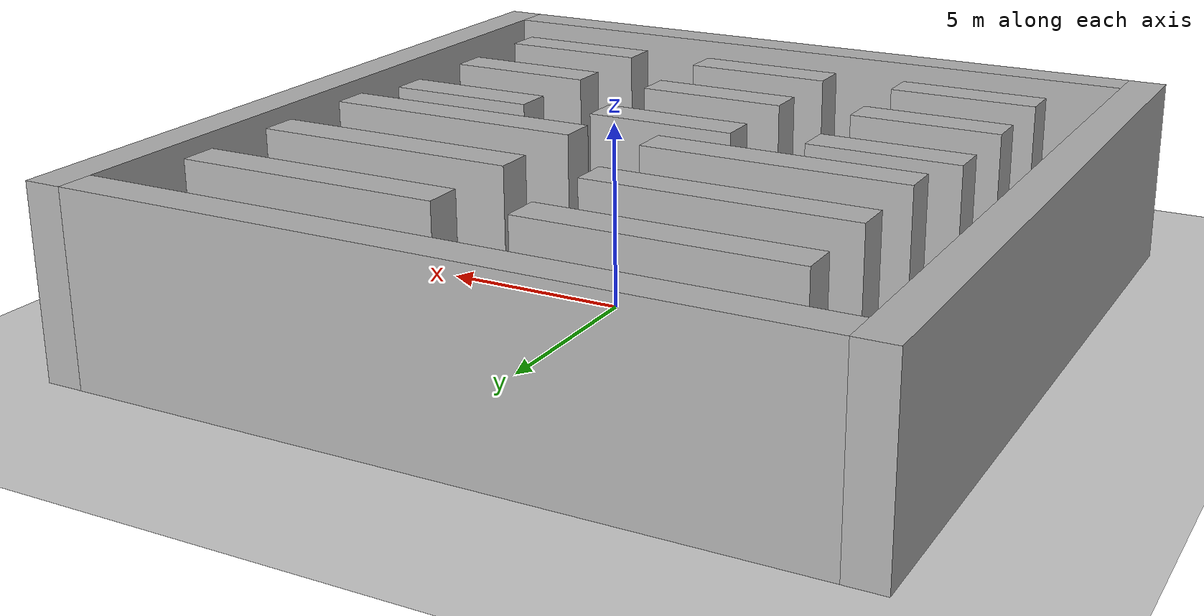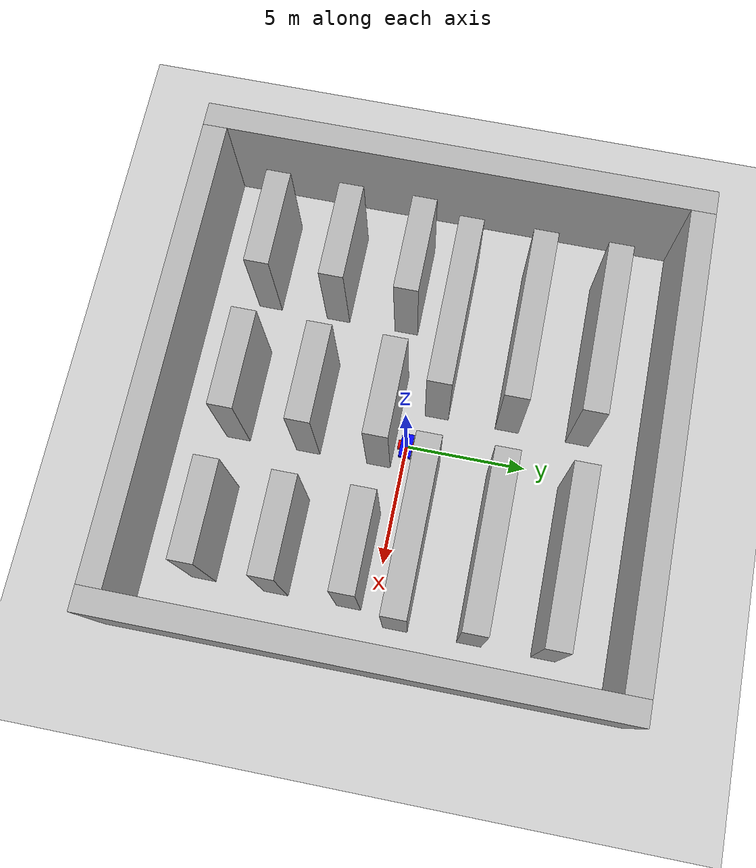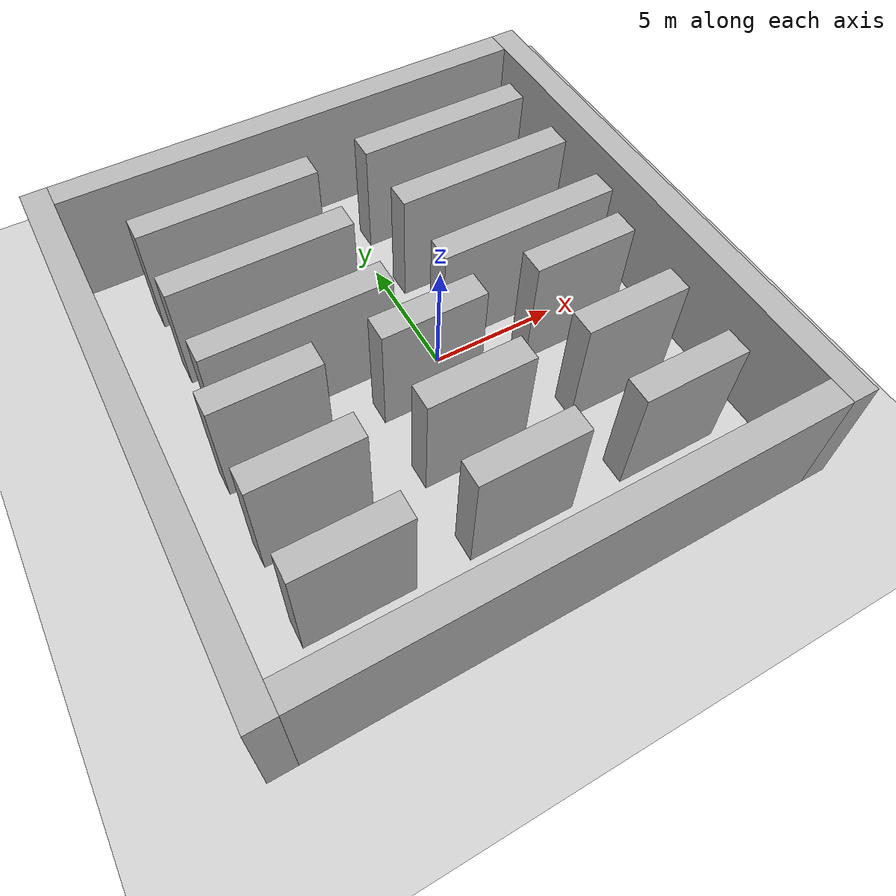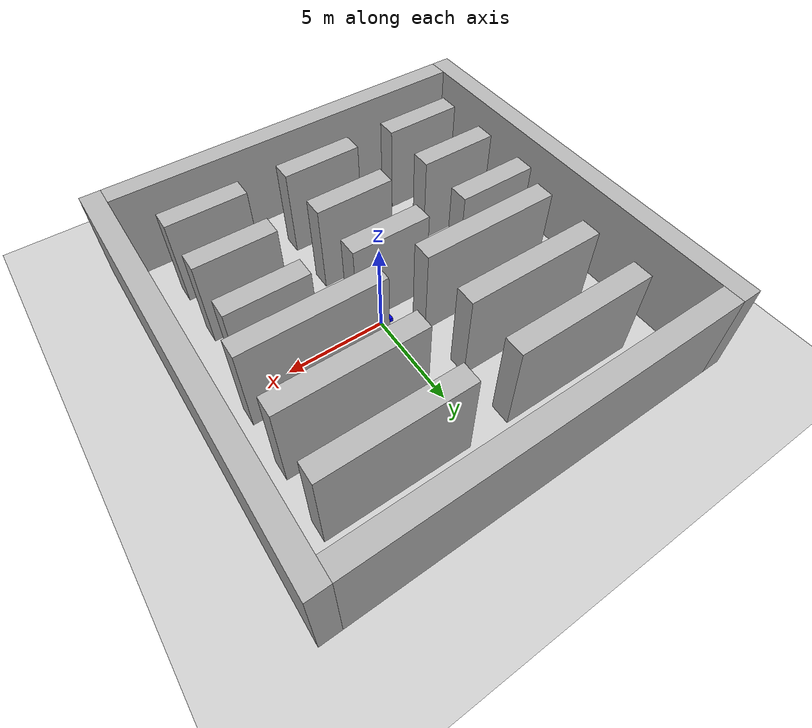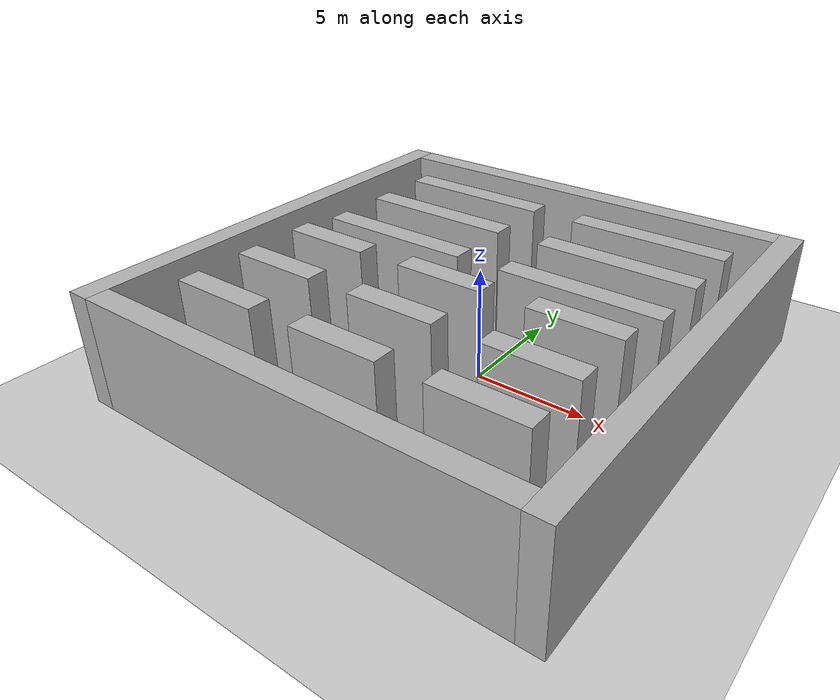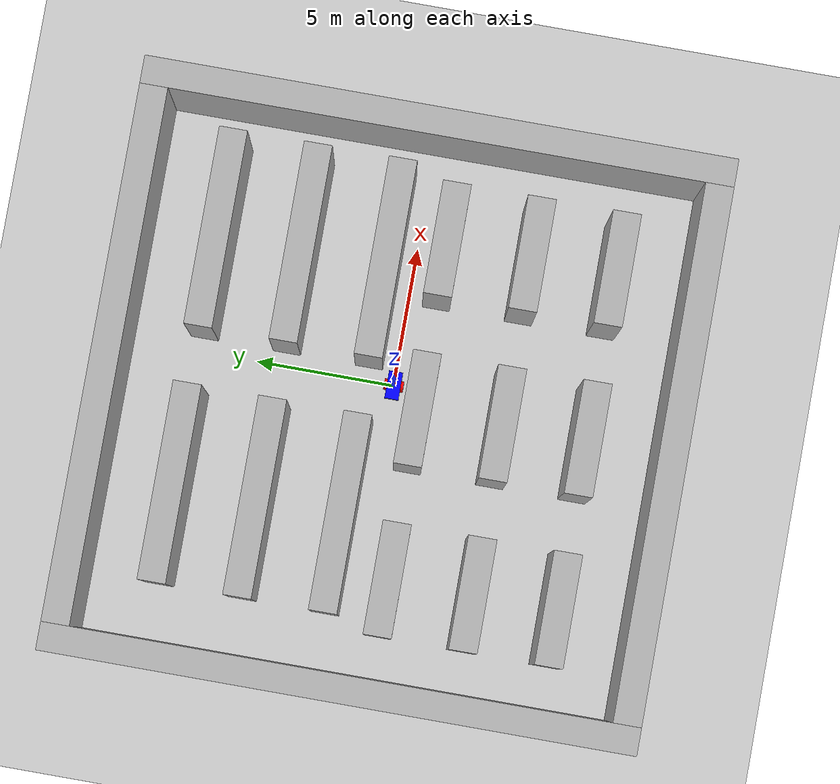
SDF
<?xml version="1.0" ?>
<sdf version="1.9">
    <world name="warehouse">
        <physics name='1ms' type='ignored'>
        <max_step_size>0.001</max_step_size>
        <real_time_factor>1</real_time_factor>
        <real_time_update_rate>1000</real_time_update_rate>
        </physics>
    <plugin
      filename="ignition-gazebo-physics-system"
      name="ignition::gazebo::systems::Physics">
    </plugin>
    <plugin
      filename="ignition-gazebo-sensors-system"
      name="ignition::gazebo::systems::Sensors">
      <render_engine>ogre2</render_engine>
    </plugin>
    <plugin
      filename="ignition-gazebo-scene-broadcaster-system"
      name="ignition::gazebo::systems::SceneBroadcaster">
    </plugin>
    <plugin
      filename="ignition-gazebo-user-commands-system"
      name="ignition::gazebo::systems::UserCommands">
    </plugin>
    <plugin filename="libignition-gazebo-imu-system.so" name="ignition::gazebo::systems::Imu">
    </plugin>
    <plugin
      filename="BasicSystem"
      name="ros_gazebo::BasicSystem"> <!--Must change directories-->
    </plugin>
    <plugin
      filename="FullSystem"
      name="ros_gazebo::FullSystem">
    </plugin>

    <gravity>0 0 -9.8</gravity>
    <magnetic_field>6e-06 2.3e-05 -4.2e-05</magnetic_field>
    <atmosphere type='adiabatic'/>
    <scene>
      <ambient>0.4 0.4 0.4 1</ambient>
      <background>0.7 0.7 0.7 1</background>
      <shadows>true</shadows>
    </scene>

    <light name="sun" type="directional">
      <cast_shadows>true</cast_shadows>
      <pose>0 0 10 0 0 0</pose>
      <diffuse>0.8 0.8 0.8 1</diffuse>
      <specular>0.2 0.2 0.2 1</specular>
      <attenuation>
        <range>1000</range>
        <constant>0.9</constant>
        <linear>0.01</linear>
        <quadratic>0.001</quadratic>
      </attenuation>
      <direction>-0.5 0.1 -0.9</direction>
    </light>

    <model name='ground_plane'>
      <static>true</static>
      <link name='link'>
        <collision name='collision'>
          <geometry>
            <plane>
              <normal>0 0 1</normal>
              <size>100 100</size>
            </plane>
          </geometry>
          <surface>
            <friction>
              <ode/>
            </friction>
            <bounce/>
            <contact/>
          </surface>
        </collision>
        <visual name='visual'>
          <geometry>
            <plane>
              <normal>0 0 1</normal>
              <size>100 100</size>
            </plane>
          </geometry>
          <material>
            <ambient>0.8 0.8 0.8 1</ambient>
            <diffuse>0.8 0.8 0.8 1</diffuse>
            <specular>0.8 0.8 0.8 1</specular>
          </material>
        </visual>
        <pose>0 0 0 0 -0 0</pose>
        <inertial>
          <pose>0 0 0 0 -0 0</pose>
          <mass>1</mass>
          <inertia>
            <ixx>1</ixx>
            <ixy>0</ixy>
            <ixz>0</ixz>
            <iyy>1</iyy>
            <iyz>0</iyz>
            <izz>1</izz>
          </inertia>
        </inertial>
        <enable_wind>false</enable_wind>
      </link>
      <pose>-6 -2 0 0 -0 0</pose>
      <self_collide>false</self_collide>
    </model>

    <model name='Boundary1'>
      <pose>-1.0 10 2.5 0 -0 0</pose>
      <link name='box_link'>
        <inertial>
          <inertia>
            <ixx>0.16666</ixx>
            <ixy>0</ixy>
            <ixz>0</ixz>
            <iyy>0.16666</iyy>
            <iyz>0</iyz>
            <izz>0.16666</izz>
          </inertia>
          <mass>1</mass>
          <pose>0 0 0 0 -0 0</pose>
        </inertial>
        <collision name='box_collision'>
          <geometry>
            <box>
              <size>19 1 5</size>
            </box>
          </geometry>
          <surface>
            <friction>
              <ode/>
            </friction>
            <bounce/>
            <contact/>
          </surface>
        </collision>
        <visual name='box_visual'>
          <geometry>
            <box>
              <size>19 1 5</size>
            </box>
          </geometry>
          <material>
            <ambient>0.3 0.3 0.3 1</ambient>
            <diffuse>0.7 0.7 0.7 1</diffuse>
            <specular>1 1 1 1</specular>
          </material>
        </visual>
        <pose>0 0 0 0 -0 0</pose>
        <enable_wind>false</enable_wind>
      </link>
      <static>true</static>
      <self_collide>false</self_collide>
    </model>

    <model name='Boundary2'>
      <pose>-1.0 -10 2.5 0 -0 0</pose>
      <link name='box_link'>
        <inertial>
          <inertia>
            <ixx>0.16666</ixx>
            <ixy>0</ixy>
            <ixz>0</ixz>
            <iyy>0.16666</iyy>
            <iyz>0</iyz>
            <izz>0.16666</izz>
          </inertia>
          <mass>1</mass>
          <pose>0 0 0 0 -0 0</pose>
        </inertial>
        <collision name='box_collision'>
          <geometry>
            <box>
              <size>19 1 5</size>
            </box>
          </geometry>
          <surface>
            <friction>
              <ode/>
            </friction>
            <bounce/>
            <contact/>
          </surface>
        </collision>
        <visual name='box_visual'>
          <geometry>
            <box>
              <size>19 1 5</size>
            </box>
          </geometry>
          <material>
            <ambient>0.3 0.3 0.3 1</ambient>
            <diffuse>0.7 0.7 0.7 1</diffuse>
            <specular>1 1 1 1</specular>
          </material>
        </visual>
        <pose>0 0 0 0 -0 0</pose>
        <enable_wind>false</enable_wind>
      </link>
      <static>true</static>
      <self_collide>false</self_collide>
    </model>

    <model name='Boundary3'>
      <pose>-11 0 2.5 0 -0 0</pose>
      <link name='box_link'>
        <inertial>
          <inertia>
            <ixx>0.16666</ixx>
            <ixy>0</ixy>
            <ixz>0</ixz>
            <iyy>0.16666</iyy>
            <iyz>0</iyz>
            <izz>0.16666</izz>
          </inertia>
          <mass>1</mass>
          <pose>0 0 0 0 -0 0</pose>
        </inertial>
        <collision name='box_collision'>
          <geometry>
            <box>
              <size>1 21 5</size>
            </box>
          </geometry>
          <surface>
            <friction>
              <ode/>
            </friction>
            <bounce/>
            <contact/>
          </surface>
        </collision>
        <visual name='box_visual'>
          <geometry>
            <box>
              <size>1 21 5</size>
            </box>
          </geometry>
          <material>
            <ambient>0.3 0.3 0.3 1</ambient>
            <diffuse>0.7 0.7 0.7 1</diffuse>
            <specular>1 1 1 1</specular>
          </material>
        </visual>
        <pose>0 0 0 0 -0 0</pose>
        <enable_wind>false</enable_wind>
      </link>
      <static>true</static>
      <self_collide>false</self_collide>
    </model>
    <model name='Boundary4'>
      <pose>9 0 2.5 0 -0 0</pose>
      <link name='box_link'>
        <inertial>
          <inertia>
            <ixx>0.16666</ixx>
            <ixy>0</ixy>
            <ixz>0</ixz>
            <iyy>0.16666</iyy>
            <iyz>0</iyz>
            <izz>0.16666</izz>
          </inertia>
          <mass>1</mass>
          <pose>0 0 0 0 -0 0</pose>
        </inertial>
        <collision name='box_collision'>
          <geometry>
            <box>
              <size>1 21 5</size>
            </box>
          </geometry>
          <surface>
            <friction>
              <ode/>
            </friction>
            <bounce/>
            <contact/>
          </surface>
        </collision>
        <visual name='box_visual'>
          <geometry>
            <box>
              <size>1 21 5</size>
            </box>
          </geometry>
          <material>
            <ambient>0.3 0.3 0.3 1</ambient>
            <diffuse>0.7 0.7 0.7 1</diffuse>
            <specular>1 1 1 1</specular>
          </material>
        </visual>
        <pose>0 0 0 0 -0 0</pose>
        <enable_wind>false</enable_wind>
      </link>
      <static>true</static>
      <self_collide>false</self_collide>
    </model>

    <model name='smallshelf1'>
      <pose>-7 -7 2.5 0 -0 0</pose>
      <link name='box_link'>
        <inertial>
          <inertia>
            <ixx>0.16666</ixx>
            <ixy>0</ixy>
            <ixz>0</ixz>
            <iyy>0.16666</iyy>
            <iyz>0</iyz>
            <izz>0.16666</izz>
          </inertia>
          <mass>1</mass>
          <pose>0 0 0 0 -0 0</pose>
        </inertial>
        <collision name='box_collision'>
          <geometry>
            <box>
              <size>4 1 5</size>
            </box>
          </geometry>
          <surface>
            <friction>
              <ode/>
            </friction>
            <bounce/>
            <contact/>
          </surface>
        </collision>
        <visual name='box_visual'>
          <geometry>
            <box>
              <size>4 1 5</size>
            </box>
          </geometry>
          <material>
            <ambient>0.3 0.3 0.3 1</ambient>
            <diffuse>0.7 0.7 0.7 1</diffuse>
            <specular>1 1 1 1</specular>
          </material>
        </visual>
        <pose>0 0 0 0 -0 0</pose>
        <enable_wind>false</enable_wind>
      </link>
      <static>true</static>
      <self_collide>false</self_collide>
    </model>

    <model name='smallshelf2'>
      <pose>-1 -7 2.5 0 -0 0</pose>
      <link name='box_link'>
        <inertial>
          <inertia>
            <ixx>0.16666</ixx>
            <ixy>0</ixy>
            <ixz>0</ixz>
            <iyy>0.16666</iyy>
            <iyz>0</iyz>
            <izz>0.16666</izz>
          </inertia>
          <mass>1</mass>
          <pose>0 0 0 0 -0 0</pose>
        </inertial>
        <collision name='box_collision'>
          <geometry>
            <box>
              <size>4 1 5</size>
            </box>
          </geometry>
          <surface>
            <friction>
              <ode/>
            </friction>
            <bounce/>
            <contact/>
          </surface>
        </collision>
        <visual name='box_visual'>
          <geometry>
            <box>
              <size>4 1 5</size>
            </box>
          </geometry>
          <material>
            <ambient>0.3 0.3 0.3 1</ambient>
            <diffuse>0.7 0.7 0.7 1</diffuse>
            <specular>1 1 1 1</specular>
          </material>
        </visual>
        <pose>0 0 0 0 -0 0</pose>
        <enable_wind>false</enable_wind>
      </link>
      <static>true</static>
      <self_collide>false</self_collide>
    </model>

    <model name='smallshelf3'>
      <pose>5 -7 2.5 0 -0 0</pose>
      <link name='box_link'>
        <inertial>
          <inertia>
            <ixx>0.16666</ixx>
            <ixy>0</ixy>
            <ixz>0</ixz>
            <iyy>0.16666</iyy>
            <iyz>0</iyz>
            <izz>0.16666</izz>
          </inertia>
          <mass>1</mass>
          <pose>0 0 0 0 -0 0</pose>
        </inertial>
        <collision name='box_collision'>
          <geometry>
            <box>
              <size>4 1 5</size>
            </box>
          </geometry>
          <surface>
            <friction>
              <ode/>
            </friction>
            <bounce/>
            <contact/>
          </surface>
        </collision>
        <visual name='box_visual'>
          <geometry>
            <box>
              <size>4 1 5</size>
            </box>
          </geometry>
          <material>
            <ambient>0.3 0.3 0.3 1</ambient>
            <diffuse>0.7 0.7 0.7 1</diffuse>
            <specular>1 1 1 1</specular>
          </material>
        </visual>
        <pose>0 0 0 0 -0 0</pose>
        <enable_wind>false</enable_wind>
      </link>
      <static>true</static>
      <self_collide>false</self_collide>
    </model>

    <model name='smallshelf4'>
      <pose>5 -4 2.5 0 -0 0</pose>
      <link name='box_link'>
        <inertial>
          <inertia>
            <ixx>0.16666</ixx>
            <ixy>0</ixy>
            <ixz>0</ixz>
            <iyy>0.16666</iyy>
            <iyz>0</iyz>
            <izz>0.16666</izz>
          </inertia>
          <mass>1</mass>
          <pose>0 0 0 0 -0 0</pose>
        </inertial>
        <collision name='box_collision'>
          <geometry>
            <box>
              <size>4 1 5</size>
            </box>
          </geometry>
          <surface>
            <friction>
              <ode/>
            </friction>
            <bounce/>
            <contact/>
          </surface>
        </collision>
        <visual name='box_visual'>
          <geometry>
            <box>
              <size>4 1 5</size>
            </box>
          </geometry>
          <material>
            <ambient>0.3 0.3 0.3 1</ambient>
            <diffuse>0.7 0.7 0.7 1</diffuse>
            <specular>1 1 1 1</specular>
          </material>
        </visual>
        <pose>0 0 0 0 -0 0</pose>
        <enable_wind>false</enable_wind>
      </link>
      <static>true</static>
      <self_collide>false</self_collide>
    </model>

    <model name='smallshelf5'>
      <pose>-1 -4 2.5 0 -0 0</pose>
      <link name='box_link'>
        <inertial>
          <inertia>
            <ixx>0.16666</ixx>
            <ixy>0</ixy>
            <ixz>0</ixz>
            <iyy>0.16666</iyy>
            <iyz>0</iyz>
            <izz>0.16666</izz>
          </inertia>
          <mass>1</mass>
          <pose>0 0 0 0 -0 0</pose>
        </inertial>
        <collision name='box_collision'>
          <geometry>
            <box>
              <size>4 1 5</size>
            </box>
          </geometry>
          <surface>
            <friction>
              <ode/>
            </friction>
            <bounce/>
            <contact/>
          </surface>
        </collision>
        <visual name='box_visual'>
          <geometry>
            <box>
              <size>4 1 5</size>
            </box>
          </geometry>
          <material>
            <ambient>0.3 0.3 0.3 1</ambient>
            <diffuse>0.7 0.7 0.7 1</diffuse>
            <specular>1 1 1 1</specular>
          </material>
        </visual>
        <pose>0 0 0 0 -0 0</pose>
        <enable_wind>false</enable_wind>
      </link>
      <static>true</static>
      <self_collide>false</self_collide>
    </model>
    <model name='smallshelf6'>
      <pose>-7 -4 2.5 0 -0 0</pose>
      <link name='box_link'>
        <inertial>
          <inertia>
            <ixx>0.16666</ixx>
            <ixy>0</ixy>
            <ixz>0</ixz>
            <iyy>0.16666</iyy>
            <iyz>0</iyz>
            <izz>0.16666</izz>
          </inertia>
          <mass>1</mass>
          <pose>0 0 0 0 -0 0</pose>
        </inertial>
        <collision name='box_collision'>
          <geometry>
            <box>
              <size>4 1 5</size>
            </box>
          </geometry>
          <surface>
            <friction>
              <ode/>
            </friction>
            <bounce/>
            <contact/>
          </surface>
        </collision>
        <visual name='box_visual'>
          <geometry>
            <box>
              <size>4 1 5</size>
            </box>
          </geometry>
          <material>
            <ambient>0.3 0.3 0.3 1</ambient>
            <diffuse>0.7 0.7 0.7 1</diffuse>
            <specular>1 1 1 1</specular>
          </material>
        </visual>
        <pose>0 0 0 0 -0 0</pose>
        <enable_wind>false</enable_wind>
      </link>
      <static>true</static>
      <self_collide>false</self_collide>
    </model>

    <model name='smallshelf7'>
      <pose>-7 -1 2.5 0 -0 0</pose>
      <link name='box_link'>
        <inertial>
          <inertia>
            <ixx>0.16666</ixx>
            <ixy>0</ixy>
            <ixz>0</ixz>
            <iyy>0.16666</iyy>
            <iyz>0</iyz>
            <izz>0.16666</izz>
          </inertia>
          <mass>1</mass>
          <pose>0 0 0 0 -0 0</pose>
        </inertial>
        <collision name='box_collision'>
          <geometry>
            <box>
              <size>4 1 5</size>
            </box>
          </geometry>
          <surface>
            <friction>
              <ode/>
            </friction>
            <bounce/>
            <contact/>
          </surface>
        </collision>
        <visual name='box_visual'>
          <geometry>
            <box>
              <size>4 1 5</size>
            </box>
          </geometry>
          <material>
            <ambient>0.3 0.3 0.3 1</ambient>
            <diffuse>0.7 0.7 0.7 1</diffuse>
            <specular>1 1 1 1</specular>
          </material>
        </visual>
        <pose>0 0 0 0 -0 0</pose>
        <enable_wind>false</enable_wind>
      </link>
      <static>true</static>
      <self_collide>false</self_collide>
    </model>

    <model name='smallself8'>
      <pose>-1 -1 2.5 0 -0 0</pose>
      <link name='box_link'>
        <inertial>
          <inertia>
            <ixx>0.16666</ixx>
            <ixy>0</ixy>
            <ixz>0</ixz>
            <iyy>0.16666</iyy>
            <iyz>0</iyz>
            <izz>0.16666</izz>
          </inertia>
          <mass>1</mass>
          <pose>0 0 0 0 -0 0</pose>
        </inertial>
        <collision name='box_collision'>
          <geometry>
            <box>
              <size>4 1 5</size>
            </box>
          </geometry>
          <surface>
            <friction>
              <ode/>
            </friction>
            <bounce/>
            <contact/>
          </surface>
        </collision>
        <visual name='box_visual'>
          <geometry>
            <box>
              <size>4 1 5</size>
            </box>
          </geometry>
          <material>
            <ambient>0.3 0.3 0.3 1</ambient>
            <diffuse>0.7 0.7 0.7 1</diffuse>
            <specular>1 1 1 1</specular>
          </material>
        </visual>
        <pose>0 0 0 0 -0 0</pose>
        <enable_wind>false</enable_wind>
      </link>
      <static>true</static>
      <self_collide>false</self_collide>
    </model>

    <model name='smallshelf9'>
      <pose>5 -1 2.5 0 -0 0</pose>
      <link name='box_link'>
        <inertial>
          <inertia>
            <ixx>0.16666</ixx>
            <ixy>0</ixy>
            <ixz>0</ixz>
            <iyy>0.16666</iyy>
            <iyz>0</iyz>
            <izz>0.16666</izz>
          </inertia>
          <mass>1</mass>
          <pose>0 0 0 0 -0 0</pose>
        </inertial>
        <collision name='box_collision'>
          <geometry>
            <box>
              <size>4 1 5</size>
            </box>
          </geometry>
          <surface>
            <friction>
              <ode/>
            </friction>
            <bounce/>
            <contact/>
          </surface>
        </collision>
        <visual name='box_visual'>
          <geometry>
            <box>
              <size>4 1 5</size>
            </box>
          </geometry>
          <material>
            <ambient>0.3 0.3 0.3 1</ambient>
            <diffuse>0.7 0.7 0.7 1</diffuse>
            <specular>1 1 1 1</specular>
          </material>
        </visual>
        <pose>0 0 0 0 -0 0</pose>
        <enable_wind>false</enable_wind>
      </link>
      <static>true</static>
      <self_collide>false</self_collide>
    </model>

    <model name='bs1'>
      <pose>4 1 2.5 0 -0 0</pose>
      <link name='box_link'>
        <inertial>
          <inertia>
            <ixx>0.16666</ixx>
            <ixy>0</ixy>
            <ixz>0</ixz>
            <iyy>0.16666</iyy>
            <iyz>0</iyz>
            <izz>0.16666</izz>
          </inertia>
          <mass>1</mass>
          <pose>0 0 0 0 -0 0</pose>
        </inertial>
        <collision name='box_collision'>
          <geometry>
            <box>
              <size>7 1 5</size>
            </box>
          </geometry>
          <surface>
            <friction>
              <ode/>
            </friction>
            <bounce/>
            <contact/>
          </surface>
        </collision>
        <visual name='box_visual'>
          <geometry>
            <box>
              <size>7 1 5</size>
            </box>
          </geometry>
          <material>
            <ambient>0.3 0.3 0.3 1</ambient>
            <diffuse>0.7 0.7 0.7 1</diffuse>
            <specular>1 1 1 1</specular>
          </material>
        </visual>
        <pose>0 0 0 0 -0 0</pose>
        <enable_wind>false</enable_wind>
      </link>
      <static>true</static>
      <self_collide>false</self_collide>
    </model>

    <model name='bs2'>
      <pose>-5 1 2.5 0 -0 0</pose>
      <link name='box_link'>
        <inertial>
          <inertia>
            <ixx>0.16666</ixx>
            <ixy>0</ixy>
            <ixz>0</ixz>
            <iyy>0.16666</iyy>
            <iyz>0</iyz>
            <izz>0.16666</izz>
          </inertia>
          <mass>1</mass>
          <pose>0 0 0 0 -0 0</pose>
        </inertial>
        <collision name='box_collision'>
          <geometry>
            <box>
              <size>7 1 5</size>
            </box>
          </geometry>
          <surface>
            <friction>
              <ode/>
            </friction>
            <bounce/>
            <contact/>
          </surface>
        </collision>
        <visual name='box_visual'>
          <geometry>
            <box>
              <size>7 1 5</size>
            </box>
          </geometry>
          <material>
            <ambient>0.3 0.3 0.3 1</ambient>
            <diffuse>0.7 0.7 0.7 1</diffuse>
            <specular>1 1 1 1</specular>
          </material>
        </visual>
        <pose>0 0 0 0 -0 0</pose>
        <enable_wind>false</enable_wind>
      </link>
      <static>true</static>
      <self_collide>false</self_collide>
    </model>

    <model name='bs3'>
      <pose>4 4 2.5 0 -0 0</pose>
      <link name='box_link'>
        <inertial>
          <inertia>
            <ixx>0.16666</ixx>
            <ixy>0</ixy>
            <ixz>0</ixz>
            <iyy>0.16666</iyy>
            <iyz>0</iyz>
            <izz>0.16666</izz>
          </inertia>
          <mass>1</mass>
          <pose>0 0 0 0 -0 0</pose>
        </inertial>
        <collision name='box_collision'>
          <geometry>
            <box>
              <size>7 1 5</size>
            </box>
          </geometry>
          <surface>
            <friction>
              <ode/>
            </friction>
            <bounce/>
            <contact/>
          </surface>
        </collision>
        <visual name='box_visual'>
          <geometry>
            <box>
              <size>7 1 5</size>
            </box>
          </geometry>
          <material>
            <ambient>0.3 0.3 0.3 1</ambient>
            <diffuse>0.7 0.7 0.7 1</diffuse>
            <specular>1 1 1 1</specular>
          </material>
        </visual>
        <pose>0 0 0 0 -0 0</pose>
        <enable_wind>false</enable_wind>
      </link>
      <static>true</static>
      <self_collide>false</self_collide>
    </model>

    <model name='bs4'>
      <pose>-5 4 2.5 0 -0 0</pose>
      <link name='box_link'>
        <inertial>
          <inertia>
            <ixx>0.16666</ixx>
            <ixy>0</ixy>
            <ixz>0</ixz>
            <iyy>0.16666</iyy>
            <iyz>0</iyz>
            <izz>0.16666</izz>
          </inertia>
          <mass>1</mass>
          <pose>0 0 0 0 -0 0</pose>
        </inertial>
        <collision name='box_collision'>
          <geometry>
            <box>
              <size>7 1 5</size>
            </box>
          </geometry>
          <surface>
            <friction>
              <ode/>
            </friction>
            <bounce/>
            <contact/>
          </surface>
        </collision>
        <visual name='box_visual'>
          <geometry>
            <box>
              <size>7 1 5</size>
            </box>
          </geometry>
          <material>
            <ambient>0.3 0.3 0.3 1</ambient>
            <diffuse>0.7 0.7 0.7 1</diffuse>
            <specular>1 1 1 1</specular>
          </material>
        </visual>
        <pose>0 0 0 0 -0 0</pose>
        <enable_wind>false</enable_wind>
      </link>
      <static>true</static>
      <self_collide>false</self_collide>
    </model>

    <model name='bs5'>
      <pose>4 7 2.5 0 -0 0</pose>
      <link name='box_link'>
        <inertial>
          <inertia>
            <ixx>0.16666</ixx>
            <ixy>0</ixy>
            <ixz>0</ixz>
            <iyy>0.16666</iyy>
            <iyz>0</iyz>
            <izz>0.16666</izz>
          </inertia>
          <mass>1</mass>
          <pose>0 0 0 0 -0 0</pose>
        </inertial>
        <collision name='box_collision'>
          <geometry>
            <box>
              <size>7 1 5</size>
            </box>
          </geometry>
          <surface>
            <friction>
              <ode/>
            </friction>
            <bounce/>
            <contact/>
          </surface>
        </collision>
        <visual name='box_visual'>
          <geometry>
            <box>
              <size>7 1 5</size>
            </box>
          </geometry>
          <material>
            <ambient>0.3 0.3 0.3 1</ambient>
            <diffuse>0.7 0.7 0.7 1</diffuse>
            <specular>1 1 1 1</specular>
          </material>
        </visual>
        <pose>0 0 0 0 -0 0</pose>
        <enable_wind>false</enable_wind>
      </link>
      <static>true</static>
      <self_collide>false</self_collide>
    </model>

    <model name='bs6'>
      <pose>-5 7 2.5 0 -0 0</pose>
      <link name='box_link'>
        <inertial>
          <inertia>
            <ixx>0.16666</ixx>
            <ixy>0</ixy>
            <ixz>0</ixz>
            <iyy>0.16666</iyy>
            <iyz>0</iyz>
            <izz>0.16666</izz>
          </inertia>
          <mass>1</mass>
          <pose>0 0 0 0 -0 0</pose>
        </inertial>
        <collision name='box_collision'>
          <geometry>
            <box>
              <size>7 1 5</size>
            </box>
          </geometry>
          <surface>
            <friction>
              <ode/>
            </friction>
            <bounce/>
            <contact/>
          </surface>
        </collision>
        <visual name='box_visual'>
          <geometry>
            <box>
              <size>7 1 5</size>
            </box>
          </geometry>
          <material>
            <ambient>0.3 0.3 0.3 1</ambient>
            <diffuse>0.7 0.7 0.7 1</diffuse>
            <specular>1 1 1 1</specular>
          </material>
        </visual>
        <pose>0 0 0 0 -0 0</pose>
        <enable_wind>false</enable_wind>
      </link>
      <static>true</static>
      <self_collide>false</self_collide>
    </model>

    <model name="Crawler">
      <self_collide>true</self_collide>
      <pose>0 0 0 0 0 0</pose>
      <include merge="true">
        <uri>package://robot_description/models/Crawler</uri>
      </include>
    </model>
  </world>
</sdf>
